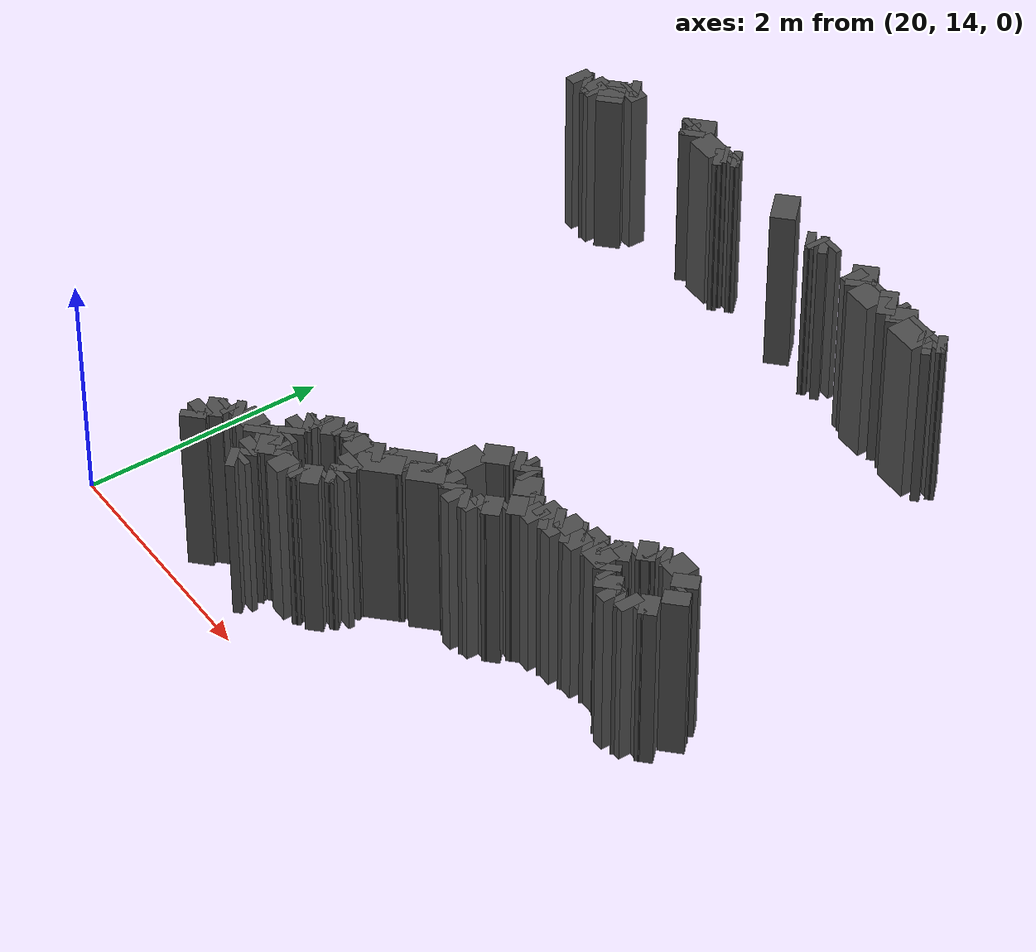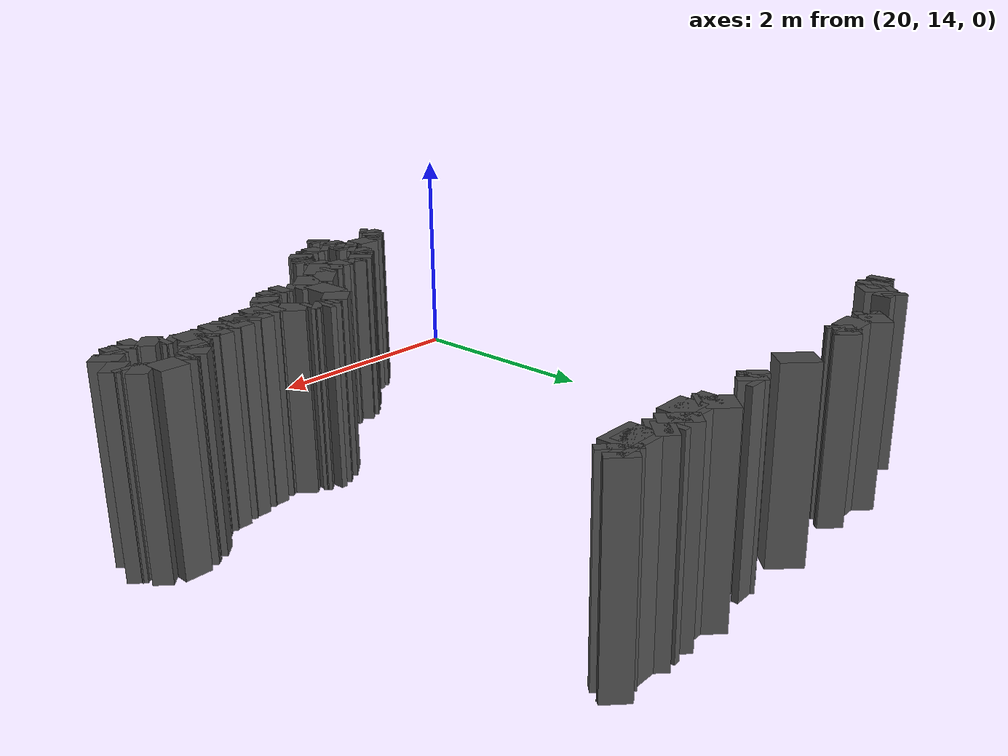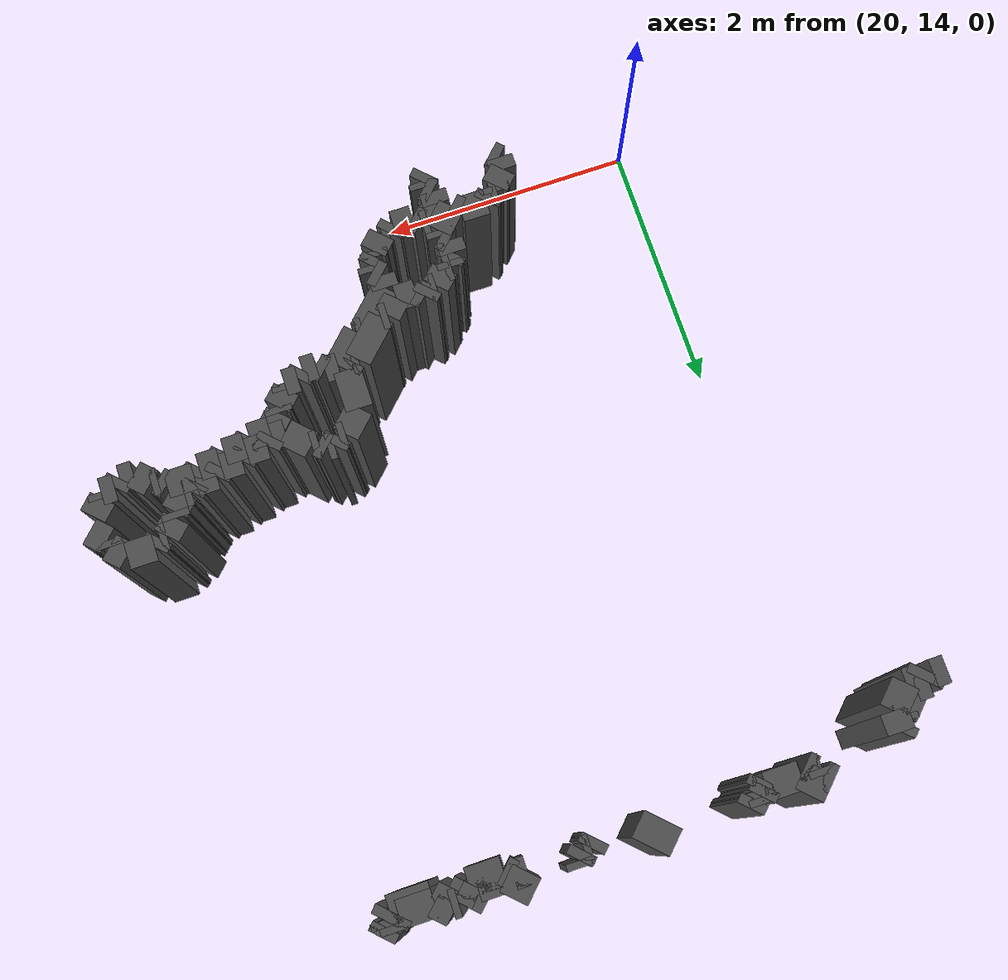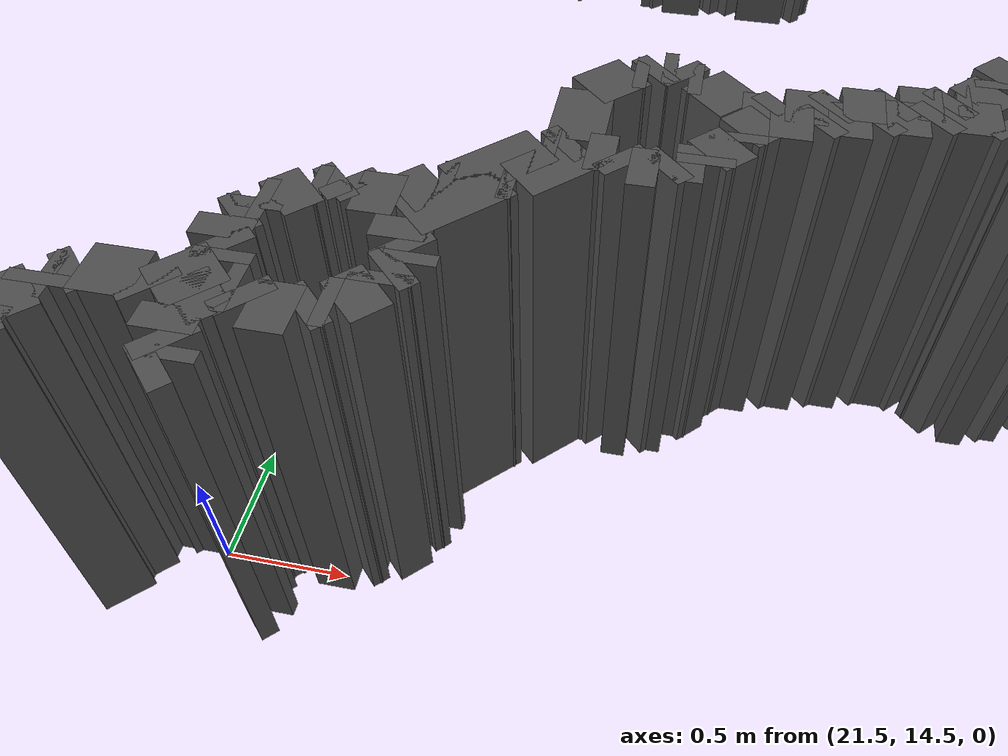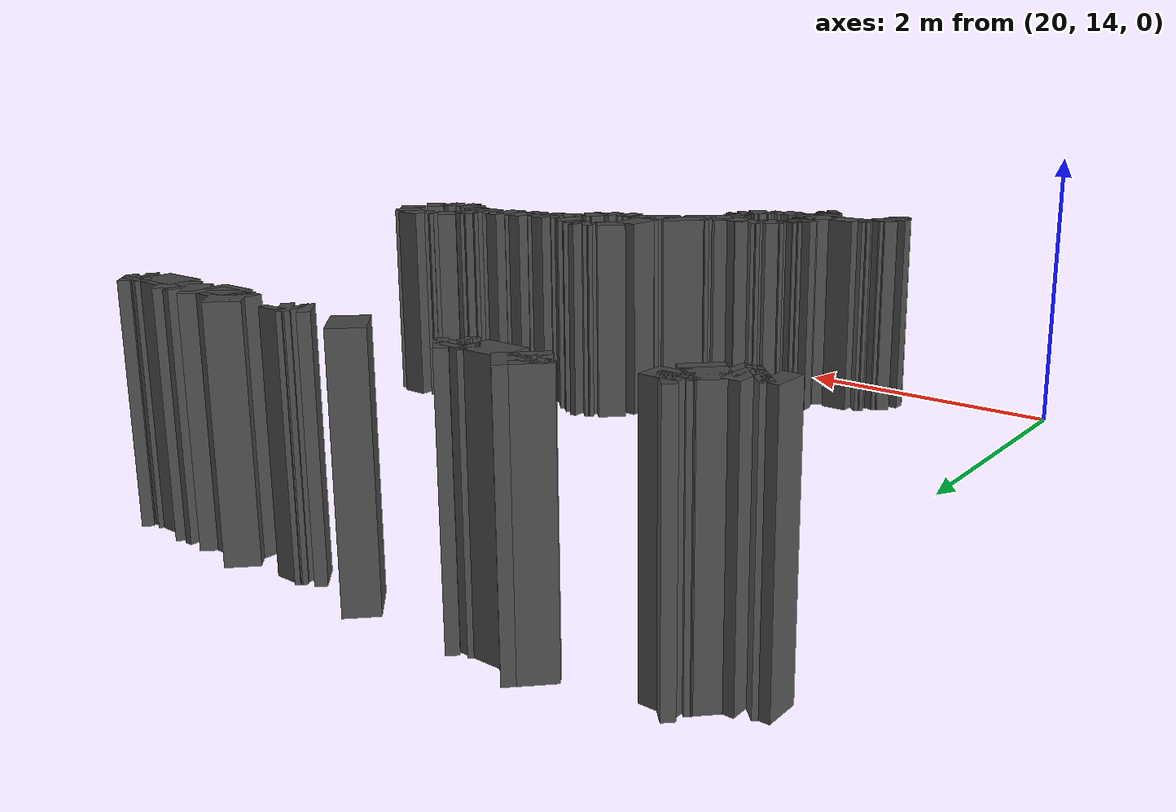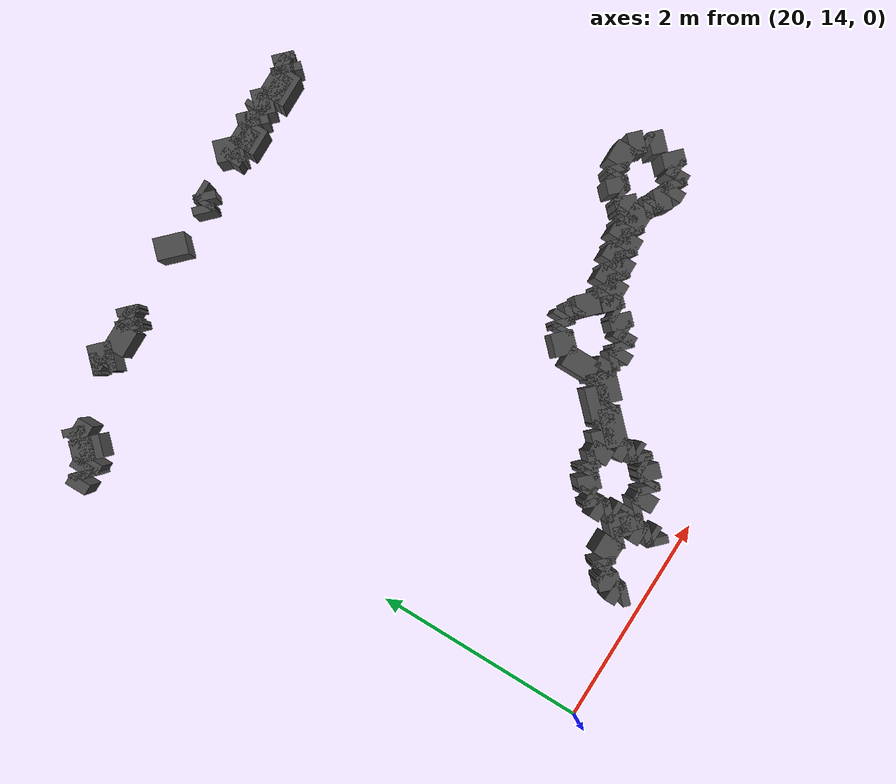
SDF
<sdf version="1.9">
 <model name="generated_walls">
  <static>true</static>
  <link name="wall_101_4">
   <pose>22.675 19.275 0.75 0 0 -0.785</pose>
   <collision name="collision"><geometry><box><size>0.212 0.2 1.5</size></box></geometry></collision>
   <visual name="visual">
    <geometry><box><size>0.212 0.2 1.5</size></box></geometry>
    <material><ambient>0.3 0.3 0.3 1</ambient></material>
   </visual>
  </link>
  <link name="wall_101_5">
   <pose>22.850 19.200 0.75 0 0 0.000</pose>
   <collision name="collision"><geometry><box><size>0.200 0.2 1.5</size></box></geometry></collision>
   <visual name="visual">
    <geometry><box><size>0.200 0.2 1.5</size></box></geometry>
    <material><ambient>0.3 0.3 0.3 1</ambient></material>
   </visual>
  </link>
  <link name="wall_101_6">
   <pose>23.000 19.250 0.75 0 0 0.785</pose>
   <collision name="collision"><geometry><box><size>0.141 0.2 1.5</size></box></geometry></collision>
   <visual name="visual">
    <geometry><box><size>0.141 0.2 1.5</size></box></geometry>
    <material><ambient>0.3 0.3 0.3 1</ambient></material>
   </visual>
  </link>
  <link name="wall_101_12">
   <pose>23.200 19.250 0.75 0 0 -0.785</pose>
   <collision name="collision"><geometry><box><size>0.141 0.2 1.5</size></box></geometry></collision>
   <visual name="visual">
    <geometry><box><size>0.141 0.2 1.5</size></box></geometry>
    <material><ambient>0.3 0.3 0.3 1</ambient></material>
   </visual>
  </link>
  <link name="wall_101_13">
   <pose>23.375 19.200 0.75 0 0 0.000</pose>
   <collision name="collision"><geometry><box><size>0.250 0.2 1.5</size></box></geometry></collision>
   <visual name="visual">
    <geometry><box><size>0.250 0.2 1.5</size></box></geometry>
    <material><ambient>0.3 0.3 0.3 1</ambient></material>
   </visual>
  </link>
  <link name="wall_101_14">
   <pose>23.525 19.225 0.75 0 0 0.785</pose>
   <collision name="collision"><geometry><box><size>0.071 0.2 1.5</size></box></geometry></collision>
   <visual name="visual">
    <geometry><box><size>0.071 0.2 1.5</size></box></geometry>
    <material><ambient>0.3 0.3 0.3 1</ambient></material>
   </visual>
  </link>
  <link name="wall_101_15">
   <pose>23.550 19.275 0.75 0 0 1.571</pose>
   <collision name="collision"><geometry><box><size>0.050 0.2 1.5</size></box></geometry></collision>
   <visual name="visual">
    <geometry><box><size>0.050 0.2 1.5</size></box></geometry>
    <material><ambient>0.3 0.3 0.3 1</ambient></material>
   </visual>
  </link>
  <link name="wall_101_20">
   <pose>23.625 19.275 0.75 0 0 -2.356</pose>
   <collision name="collision"><geometry><box><size>0.071 0.2 1.5</size></box></geometry></collision>
   <visual name="visual">
    <geometry><box><size>0.071 0.2 1.5</size></box></geometry>
    <material><ambient>0.3 0.3 0.3 1</ambient></material>
   </visual>
  </link>
  <link name="wall_101_21">
   <pose>23.600 19.225 0.75 0 0 -1.571</pose>
   <collision name="collision"><geometry><box><size>0.050 0.2 1.5</size></box></geometry></collision>
   <visual name="visual">
    <geometry><box><size>0.050 0.2 1.5</size></box></geometry>
    <material><ambient>0.3 0.3 0.3 1</ambient></material>
   </visual>
  </link>
  <link name="wall_101_22">
   <pose>23.575 19.175 0.75 0 0 -2.356</pose>
   <collision name="collision"><geometry><box><size>0.071 0.2 1.5</size></box></geometry></collision>
   <visual name="visual">
    <geometry><box><size>0.071 0.2 1.5</size></box></geometry>
    <material><ambient>0.3 0.3 0.3 1</ambient></material>
   </visual>
  </link>
  <link name="wall_101_23">
   <pose>23.400 19.150 0.75 0 0 3.142</pose>
   <collision name="collision"><geometry><box><size>0.300 0.2 1.5</size></box></geometry></collision>
   <visual name="visual">
    <geometry><box><size>0.300 0.2 1.5</size></box></geometry>
    <material><ambient>0.3 0.3 0.3 1</ambient></material>
   </visual>
  </link>
  <link name="wall_101_24">
   <pose>23.200 19.200 0.75 0 0 2.356</pose>
   <collision name="collision"><geometry><box><size>0.141 0.2 1.5</size></box></geometry></collision>
   <visual name="visual">
    <geometry><box><size>0.141 0.2 1.5</size></box></geometry>
    <material><ambient>0.3 0.3 0.3 1</ambient></material>
   </visual>
  </link>
  <link name="wall_101_25">
   <pose>23.125 19.250 0.75 0 0 3.142</pose>
   <collision name="collision"><geometry><box><size>0.050 0.2 1.5</size></box></geometry></collision>
   <visual name="visual">
    <geometry><box><size>0.050 0.2 1.5</size></box></geometry>
    <material><ambient>0.3 0.3 0.3 1</ambient></material>
   </visual>
  </link>
  <link name="wall_101_26">
   <pose>23.050 19.200 0.75 0 0 -2.356</pose>
   <collision name="collision"><geometry><box><size>0.141 0.2 1.5</size></box></geometry></collision>
   <visual name="visual">
    <geometry><box><size>0.141 0.2 1.5</size></box></geometry>
    <material><ambient>0.3 0.3 0.3 1</ambient></material>
   </visual>
  </link>
  <link name="wall_101_27">
   <pose>22.875 19.150 0.75 0 0 3.142</pose>
   <collision name="collision"><geometry><box><size>0.250 0.2 1.5</size></box></geometry></collision>
   <visual name="visual">
    <geometry><box><size>0.250 0.2 1.5</size></box></geometry>
    <material><ambient>0.3 0.3 0.3 1</ambient></material>
   </visual>
  </link>
  <link name="wall_101_28">
   <pose>22.725 19.175 0.75 0 0 2.356</pose>
   <collision name="collision"><geometry><box><size>0.071 0.2 1.5</size></box></geometry></collision>
   <visual name="visual">
    <geometry><box><size>0.071 0.2 1.5</size></box></geometry>
    <material><ambient>0.3 0.3 0.3 1</ambient></material>
   </visual>
  </link>
  <link name="wall_101_29">
   <pose>22.650 19.200 0.75 0 0 3.142</pose>
   <collision name="collision"><geometry><box><size>0.100 0.2 1.5</size></box></geometry></collision>
   <visual name="visual">
    <geometry><box><size>0.100 0.2 1.5</size></box></geometry>
    <material><ambient>0.3 0.3 0.3 1</ambient></material>
   </visual>
  </link>
  <link name="wall_102_0">
   <pose>21.700 19.250 0.75 0 0 2.356</pose>
   <collision name="collision"><geometry><box><size>0.283 0.2 1.5</size></box></geometry></collision>
   <visual name="visual">
    <geometry><box><size>0.283 0.2 1.5</size></box></geometry>
    <material><ambient>0.3 0.3 0.3 1</ambient></material>
   </visual>
  </link>
  <link name="wall_102_17">
   <pose>22.250 19.275 0.75 0 0 -1.571</pose>
   <collision name="collision"><geometry><box><size>0.050 0.2 1.5</size></box></geometry></collision>
   <visual name="visual">
    <geometry><box><size>0.050 0.2 1.5</size></box></geometry>
    <material><ambient>0.3 0.3 0.3 1</ambient></material>
   </visual>
  </link>
  <link name="wall_102_18">
   <pose>22.225 19.225 0.75 0 0 -2.356</pose>
   <collision name="collision"><geometry><box><size>0.071 0.2 1.5</size></box></geometry></collision>
   <visual name="visual">
    <geometry><box><size>0.071 0.2 1.5</size></box></geometry>
    <material><ambient>0.3 0.3 0.3 1</ambient></material>
   </visual>
  </link>
  <link name="wall_102_19">
   <pose>22.175 19.200 0.75 0 0 3.142</pose>
   <collision name="collision"><geometry><box><size>0.050 0.2 1.5</size></box></geometry></collision>
   <visual name="visual">
    <geometry><box><size>0.050 0.2 1.5</size></box></geometry>
    <material><ambient>0.3 0.3 0.3 1</ambient></material>
   </visual>
  </link>
  <link name="wall_102_20">
   <pose>22.125 19.175 0.75 0 0 -2.356</pose>
   <collision name="collision"><geometry><box><size>0.071 0.2 1.5</size></box></geometry></collision>
   <visual name="visual">
    <geometry><box><size>0.071 0.2 1.5</size></box></geometry>
    <material><ambient>0.3 0.3 0.3 1</ambient></material>
   </visual>
  </link>
  <link name="wall_103_0">
   <pose>20.575 19.175 0.75 0 0 2.356</pose>
   <collision name="collision"><geometry><box><size>0.071 0.2 1.5</size></box></geometry></collision>
   <visual name="visual">
    <geometry><box><size>0.071 0.2 1.5</size></box></geometry>
    <material><ambient>0.3 0.3 0.3 1</ambient></material>
   </visual>
  </link>
  <link name="wall_103_1">
   <pose>20.525 19.200 0.75 0 0 3.142</pose>
   <collision name="collision"><geometry><box><size>0.050 0.2 1.5</size></box></geometry></collision>
   <visual name="visual">
    <geometry><box><size>0.050 0.2 1.5</size></box></geometry>
    <material><ambient>0.3 0.3 0.3 1</ambient></material>
   </visual>
  </link>
  <link name="wall_103_2">
   <pose>20.500 19.225 0.75 0 0 1.571</pose>
   <collision name="collision"><geometry><box><size>0.050 0.2 1.5</size></box></geometry></collision>
   <visual name="visual">
    <geometry><box><size>0.050 0.2 1.5</size></box></geometry>
    <material><ambient>0.3 0.3 0.3 1</ambient></material>
   </visual>
  </link>
  <link name="wall_103_3">
   <pose>20.475 19.275 0.75 0 0 2.356</pose>
   <collision name="collision"><geometry><box><size>0.071 0.2 1.5</size></box></geometry></collision>
   <visual name="visual">
    <geometry><box><size>0.071 0.2 1.5</size></box></geometry>
    <material><ambient>0.3 0.3 0.3 1</ambient></material>
   </visual>
  </link>
  <link name="wall_103_7">
   <pose>20.575 19.275 0.75 0 0 -0.785</pose>
   <collision name="collision"><geometry><box><size>0.212 0.2 1.5</size></box></geometry></collision>
   <visual name="visual">
    <geometry><box><size>0.212 0.2 1.5</size></box></geometry>
    <material><ambient>0.3 0.3 0.3 1</ambient></material>
   </visual>
  </link>
  <link name="wall_103_8">
   <pose>20.775 19.200 0.75 0 0 0.000</pose>
   <collision name="collision"><geometry><box><size>0.250 0.2 1.5</size></box></geometry></collision>
   <visual name="visual">
    <geometry><box><size>0.250 0.2 1.5</size></box></geometry>
    <material><ambient>0.3 0.3 0.3 1</ambient></material>
   </visual>
  </link>
  <link name="wall_103_9">
   <pose>20.925 19.225 0.75 0 0 0.785</pose>
   <collision name="collision"><geometry><box><size>0.071 0.2 1.5</size></box></geometry></collision>
   <visual name="visual">
    <geometry><box><size>0.071 0.2 1.5</size></box></geometry>
    <material><ambient>0.3 0.3 0.3 1</ambient></material>
   </visual>
  </link>
  <link name="wall_103_10">
   <pose>20.950 19.275 0.75 0 0 1.571</pose>
   <collision name="collision"><geometry><box><size>0.050 0.2 1.5</size></box></geometry></collision>
   <visual name="visual">
    <geometry><box><size>0.050 0.2 1.5</size></box></geometry>
    <material><ambient>0.3 0.3 0.3 1</ambient></material>
   </visual>
  </link>
  <link name="wall_103_34">
   <pose>21.025 19.275 0.75 0 0 -2.356</pose>
   <collision name="collision"><geometry><box><size>0.071 0.2 1.5</size></box></geometry></collision>
   <visual name="visual">
    <geometry><box><size>0.071 0.2 1.5</size></box></geometry>
    <material><ambient>0.3 0.3 0.3 1</ambient></material>
   </visual>
  </link>
  <link name="wall_103_35">
   <pose>21.000 19.225 0.75 0 0 -1.571</pose>
   <collision name="collision"><geometry><box><size>0.050 0.2 1.5</size></box></geometry></collision>
   <visual name="visual">
    <geometry><box><size>0.050 0.2 1.5</size></box></geometry>
    <material><ambient>0.3 0.3 0.3 1</ambient></material>
   </visual>
  </link>
  <link name="wall_103_36">
   <pose>20.975 19.200 0.75 0 0 3.142</pose>
   <collision name="collision"><geometry><box><size>0.050 0.2 1.5</size></box></geometry></collision>
   <visual name="visual">
    <geometry><box><size>0.050 0.2 1.5</size></box></geometry>
    <material><ambient>0.3 0.3 0.3 1</ambient></material>
   </visual>
  </link>
  <link name="wall_103_37">
   <pose>20.925 19.175 0.75 0 0 -2.356</pose>
   <collision name="collision"><geometry><box><size>0.071 0.2 1.5</size></box></geometry></collision>
   <visual name="visual">
    <geometry><box><size>0.071 0.2 1.5</size></box></geometry>
    <material><ambient>0.3 0.3 0.3 1</ambient></material>
   </visual>
  </link>
  <link name="wall_111_54">
   <pose>19.500 18.850 0.75 0 0 0.000</pose>
   <collision name="collision"><geometry><box><size>0.100 0.2 1.5</size></box></geometry></collision>
   <visual name="visual">
    <geometry><box><size>0.100 0.2 1.5</size></box></geometry>
    <material><ambient>0.3 0.3 0.3 1</ambient></material>
   </visual>
  </link>
  <link name="wall_111_55">
   <pose>19.575 18.875 0.75 0 0 0.785</pose>
   <collision name="collision"><geometry><box><size>0.071 0.2 1.5</size></box></geometry></collision>
   <visual name="visual">
    <geometry><box><size>0.071 0.2 1.5</size></box></geometry>
    <material><ambient>0.3 0.3 0.3 1</ambient></material>
   </visual>
  </link>
  <link name="wall_111_56">
   <pose>19.650 18.900 0.75 0 0 0.000</pose>
   <collision name="collision"><geometry><box><size>0.100 0.2 1.5</size></box></geometry></collision>
   <visual name="visual">
    <geometry><box><size>0.100 0.2 1.5</size></box></geometry>
    <material><ambient>0.3 0.3 0.3 1</ambient></material>
   </visual>
  </link>
  <link name="wall_111_57">
   <pose>19.775 18.975 0.75 0 0 0.785</pose>
   <collision name="collision"><geometry><box><size>0.212 0.2 1.5</size></box></geometry></collision>
   <visual name="visual">
    <geometry><box><size>0.212 0.2 1.5</size></box></geometry>
    <material><ambient>0.3 0.3 0.3 1</ambient></material>
   </visual>
  </link>
  <link name="wall_111_58">
   <pose>19.850 19.075 0.75 0 0 1.571</pose>
   <collision name="collision"><geometry><box><size>0.050 0.2 1.5</size></box></geometry></collision>
   <visual name="visual">
    <geometry><box><size>0.050 0.2 1.5</size></box></geometry>
    <material><ambient>0.3 0.3 0.3 1</ambient></material>
   </visual>
  </link>
  <link name="wall_111_59">
   <pose>19.875 19.125 0.75 0 0 0.785</pose>
   <collision name="collision"><geometry><box><size>0.071 0.2 1.5</size></box></geometry></collision>
   <visual name="visual">
    <geometry><box><size>0.071 0.2 1.5</size></box></geometry>
    <material><ambient>0.3 0.3 0.3 1</ambient></material>
   </visual>
  </link>
  <link name="wall_111_60">
   <pose>19.900 19.075 0.75 0 0 -1.571</pose>
   <collision name="collision"><geometry><box><size>0.150 0.2 1.5</size></box></geometry></collision>
   <visual name="visual">
    <geometry><box><size>0.150 0.2 1.5</size></box></geometry>
    <material><ambient>0.3 0.3 0.3 1</ambient></material>
   </visual>
  </link>
  <link name="wall_111_61">
   <pose>19.825 18.925 0.75 0 0 -2.356</pose>
   <collision name="collision"><geometry><box><size>0.212 0.2 1.5</size></box></geometry></collision>
   <visual name="visual">
    <geometry><box><size>0.212 0.2 1.5</size></box></geometry>
    <material><ambient>0.3 0.3 0.3 1</ambient></material>
   </visual>
  </link>
  <link name="wall_111_62">
   <pose>19.700 18.850 0.75 0 0 3.142</pose>
   <collision name="collision"><geometry><box><size>0.100 0.2 1.5</size></box></geometry></collision>
   <visual name="visual">
    <geometry><box><size>0.100 0.2 1.5</size></box></geometry>
    <material><ambient>0.3 0.3 0.3 1</ambient></material>
   </visual>
  </link>
  <link name="wall_111_63">
   <pose>19.625 18.825 0.75 0 0 -2.356</pose>
   <collision name="collision"><geometry><box><size>0.071 0.2 1.5</size></box></geometry></collision>
   <visual name="visual">
    <geometry><box><size>0.071 0.2 1.5</size></box></geometry>
    <material><ambient>0.3 0.3 0.3 1</ambient></material>
   </visual>
  </link>
  <link name="wall_161_1552">
   <pose>24.650 15.900 0.75 0 0 -2.356</pose>
   <collision name="collision"><geometry><box><size>0.141 0.2 1.5</size></box></geometry></collision>
   <visual name="visual">
    <geometry><box><size>0.141 0.2 1.5</size></box></geometry>
    <material><ambient>0.3 0.3 0.3 1</ambient></material>
   </visual>
  </link>
  <link name="wall_161_1553">
   <pose>24.600 15.825 0.75 0 0 -1.571</pose>
   <collision name="collision"><geometry><box><size>0.050 0.2 1.5</size></box></geometry></collision>
   <visual name="visual">
    <geometry><box><size>0.050 0.2 1.5</size></box></geometry>
    <material><ambient>0.3 0.3 0.3 1</ambient></material>
   </visual>
  </link>
  <link name="wall_161_1554">
   <pose>24.550 15.800 0.75 0 0 3.142</pose>
   <collision name="collision"><geometry><box><size>0.100 0.2 1.5</size></box></geometry></collision>
   <visual name="visual">
    <geometry><box><size>0.100 0.2 1.5</size></box></geometry>
    <material><ambient>0.3 0.3 0.3 1</ambient></material>
   </visual>
  </link>
  <link name="wall_161_1555">
   <pose>24.475 15.775 0.75 0 0 -2.356</pose>
   <collision name="collision"><geometry><box><size>0.071 0.2 1.5</size></box></geometry></collision>
   <visual name="visual">
    <geometry><box><size>0.071 0.2 1.5</size></box></geometry>
    <material><ambient>0.3 0.3 0.3 1</ambient></material>
   </visual>
  </link>
  <link name="wall_161_1556">
   <pose>24.400 15.750 0.75 0 0 3.142</pose>
   <collision name="collision"><geometry><box><size>0.100 0.2 1.5</size></box></geometry></collision>
   <visual name="visual">
    <geometry><box><size>0.100 0.2 1.5</size></box></geometry>
    <material><ambient>0.3 0.3 0.3 1</ambient></material>
   </visual>
  </link>
  <link name="wall_161_1557">
   <pose>24.300 15.800 0.75 0 0 2.356</pose>
   <collision name="collision"><geometry><box><size>0.141 0.2 1.5</size></box></geometry></collision>
   <visual name="visual">
    <geometry><box><size>0.141 0.2 1.5</size></box></geometry>
    <material><ambient>0.3 0.3 0.3 1</ambient></material>
   </visual>
  </link>
  <link name="wall_161_1558">
   <pose>24.225 15.850 0.75 0 0 3.142</pose>
   <collision name="collision"><geometry><box><size>0.050 0.2 1.5</size></box></geometry></collision>
   <visual name="visual">
    <geometry><box><size>0.050 0.2 1.5</size></box></geometry>
    <material><ambient>0.3 0.3 0.3 1</ambient></material>
   </visual>
  </link>
  <link name="wall_161_1559">
   <pose>24.175 15.875 0.75 0 0 2.356</pose>
   <collision name="collision"><geometry><box><size>0.071 0.2 1.5</size></box></geometry></collision>
   <visual name="visual">
    <geometry><box><size>0.071 0.2 1.5</size></box></geometry>
    <material><ambient>0.3 0.3 0.3 1</ambient></material>
   </visual>
  </link>
  <link name="wall_161_1560">
   <pose>24.050 15.900 0.75 0 0 3.142</pose>
   <collision name="collision"><geometry><box><size>0.200 0.2 1.5</size></box></geometry></collision>
   <visual name="visual">
    <geometry><box><size>0.200 0.2 1.5</size></box></geometry>
    <material><ambient>0.3 0.3 0.3 1</ambient></material>
   </visual>
  </link>
  <link name="wall_161_1561">
   <pose>23.925 15.875 0.75 0 0 -2.356</pose>
   <collision name="collision"><geometry><box><size>0.071 0.2 1.5</size></box></geometry></collision>
   <visual name="visual">
    <geometry><box><size>0.071 0.2 1.5</size></box></geometry>
    <material><ambient>0.3 0.3 0.3 1</ambient></material>
   </visual>
  </link>
  <link name="wall_161_1562">
   <pose>23.825 15.850 0.75 0 0 3.142</pose>
   <collision name="collision"><geometry><box><size>0.150 0.2 1.5</size></box></geometry></collision>
   <visual name="visual">
    <geometry><box><size>0.150 0.2 1.5</size></box></geometry>
    <material><ambient>0.3 0.3 0.3 1</ambient></material>
   </visual>
  </link>
  <link name="wall_161_1563">
   <pose>23.725 15.825 0.75 0 0 -2.356</pose>
   <collision name="collision"><geometry><box><size>0.071 0.2 1.5</size></box></geometry></collision>
   <visual name="visual">
    <geometry><box><size>0.071 0.2 1.5</size></box></geometry>
    <material><ambient>0.3 0.3 0.3 1</ambient></material>
   </visual>
  </link>
  <link name="wall_161_1564">
   <pose>23.625 15.800 0.75 0 0 3.142</pose>
   <collision name="collision"><geometry><box><size>0.150 0.2 1.5</size></box></geometry></collision>
   <visual name="visual">
    <geometry><box><size>0.150 0.2 1.5</size></box></geometry>
    <material><ambient>0.3 0.3 0.3 1</ambient></material>
   </visual>
  </link>
  <link name="wall_161_1565">
   <pose>23.525 15.775 0.75 0 0 -2.356</pose>
   <collision name="collision"><geometry><box><size>0.071 0.2 1.5</size></box></geometry></collision>
   <visual name="visual">
    <geometry><box><size>0.071 0.2 1.5</size></box></geometry>
    <material><ambient>0.3 0.3 0.3 1</ambient></material>
   </visual>
  </link>
  <link name="wall_161_1566">
   <pose>23.425 15.750 0.75 0 0 3.142</pose>
   <collision name="collision"><geometry><box><size>0.150 0.2 1.5</size></box></geometry></collision>
   <visual name="visual">
    <geometry><box><size>0.150 0.2 1.5</size></box></geometry>
    <material><ambient>0.3 0.3 0.3 1</ambient></material>
   </visual>
  </link>
  <link name="wall_161_1567">
   <pose>23.300 15.700 0.75 0 0 -2.356</pose>
   <collision name="collision"><geometry><box><size>0.141 0.2 1.5</size></box></geometry></collision>
   <visual name="visual">
    <geometry><box><size>0.141 0.2 1.5</size></box></geometry>
    <material><ambient>0.3 0.3 0.3 1</ambient></material>
   </visual>
  </link>
  <link name="wall_161_1568">
   <pose>23.250 15.625 0.75 0 0 -1.571</pose>
   <collision name="collision"><geometry><box><size>0.050 0.2 1.5</size></box></geometry></collision>
   <visual name="visual">
    <geometry><box><size>0.050 0.2 1.5</size></box></geometry>
    <material><ambient>0.3 0.3 0.3 1</ambient></material>
   </visual>
  </link>
  <link name="wall_161_1569">
   <pose>23.200 15.550 0.75 0 0 -2.356</pose>
   <collision name="collision"><geometry><box><size>0.141 0.2 1.5</size></box></geometry></collision>
   <visual name="visual">
    <geometry><box><size>0.141 0.2 1.5</size></box></geometry>
    <material><ambient>0.3 0.3 0.3 1</ambient></material>
   </visual>
  </link>
  <link name="wall_161_1570">
   <pose>23.150 15.475 0.75 0 0 -1.571</pose>
   <collision name="collision"><geometry><box><size>0.050 0.2 1.5</size></box></geometry></collision>
   <visual name="visual">
    <geometry><box><size>0.050 0.2 1.5</size></box></geometry>
    <material><ambient>0.3 0.3 0.3 1</ambient></material>
   </visual>
  </link>
  <link name="wall_161_1571">
   <pose>23.100 15.450 0.75 0 0 3.142</pose>
   <collision name="collision"><geometry><box><size>0.100 0.2 1.5</size></box></geometry></collision>
   <visual name="visual">
    <geometry><box><size>0.100 0.2 1.5</size></box></geometry>
    <material><ambient>0.3 0.3 0.3 1</ambient></material>
   </visual>
  </link>
  <link name="wall_161_1572">
   <pose>23.025 15.425 0.75 0 0 -2.356</pose>
   <collision name="collision"><geometry><box><size>0.071 0.2 1.5</size></box></geometry></collision>
   <visual name="visual">
    <geometry><box><size>0.071 0.2 1.5</size></box></geometry>
    <material><ambient>0.3 0.3 0.3 1</ambient></material>
   </visual>
  </link>
  <link name="wall_161_1573">
   <pose>22.950 15.400 0.75 0 0 3.142</pose>
   <collision name="collision"><geometry><box><size>0.100 0.2 1.5</size></box></geometry></collision>
   <visual name="visual">
    <geometry><box><size>0.100 0.2 1.5</size></box></geometry>
    <material><ambient>0.3 0.3 0.3 1</ambient></material>
   </visual>
  </link>
  <link name="wall_161_1574">
   <pose>22.875 15.425 0.75 0 0 2.356</pose>
   <collision name="collision"><geometry><box><size>0.071 0.2 1.5</size></box></geometry></collision>
   <visual name="visual">
    <geometry><box><size>0.071 0.2 1.5</size></box></geometry>
    <material><ambient>0.3 0.3 0.3 1</ambient></material>
   </visual>
  </link>
  <link name="wall_161_1575">
   <pose>22.800 15.450 0.75 0 0 3.142</pose>
   <collision name="collision"><geometry><box><size>0.100 0.2 1.5</size></box></geometry></collision>
   <visual name="visual">
    <geometry><box><size>0.100 0.2 1.5</size></box></geometry>
    <material><ambient>0.3 0.3 0.3 1</ambient></material>
   </visual>
  </link>
  <link name="wall_161_1576">
   <pose>22.650 15.350 0.75 0 0 -2.356</pose>
   <collision name="collision"><geometry><box><size>0.283 0.2 1.5</size></box></geometry></collision>
   <visual name="visual">
    <geometry><box><size>0.283 0.2 1.5</size></box></geometry>
    <material><ambient>0.3 0.3 0.3 1</ambient></material>
   </visual>
  </link>
  <link name="wall_161_1577">
   <pose>22.525 15.250 0.75 0 0 3.142</pose>
   <collision name="collision"><geometry><box><size>0.050 0.2 1.5</size></box></geometry></collision>
   <visual name="visual">
    <geometry><box><size>0.050 0.2 1.5</size></box></geometry>
    <material><ambient>0.3 0.3 0.3 1</ambient></material>
   </visual>
  </link>
  <link name="wall_161_1578">
   <pose>22.375 15.125 0.75 0 0 -2.356</pose>
   <collision name="collision"><geometry><box><size>0.354 0.2 1.5</size></box></geometry></collision>
   <visual name="visual">
    <geometry><box><size>0.354 0.2 1.5</size></box></geometry>
    <material><ambient>0.3 0.3 0.3 1</ambient></material>
   </visual>
  </link>
  <link name="wall_161_1579">
   <pose>22.250 14.950 0.75 0 0 -1.571</pose>
   <collision name="collision"><geometry><box><size>0.100 0.2 1.5</size></box></geometry></collision>
   <visual name="visual">
    <geometry><box><size>0.100 0.2 1.5</size></box></geometry>
    <material><ambient>0.3 0.3 0.3 1</ambient></material>
   </visual>
  </link>
  <link name="wall_161_1580">
   <pose>22.275 14.875 0.75 0 0 -0.785</pose>
   <collision name="collision"><geometry><box><size>0.071 0.2 1.5</size></box></geometry></collision>
   <visual name="visual">
    <geometry><box><size>0.071 0.2 1.5</size></box></geometry>
    <material><ambient>0.3 0.3 0.3 1</ambient></material>
   </visual>
  </link>
  <link name="wall_161_1581">
   <pose>22.300 14.825 0.75 0 0 -1.571</pose>
   <collision name="collision"><geometry><box><size>0.050 0.2 1.5</size></box></geometry></collision>
   <visual name="visual">
    <geometry><box><size>0.050 0.2 1.5</size></box></geometry>
    <material><ambient>0.3 0.3 0.3 1</ambient></material>
   </visual>
  </link>
  <link name="wall_161_1582">
   <pose>22.275 14.775 0.75 0 0 -2.356</pose>
   <collision name="collision"><geometry><box><size>0.071 0.2 1.5</size></box></geometry></collision>
   <visual name="visual">
    <geometry><box><size>0.071 0.2 1.5</size></box></geometry>
    <material><ambient>0.3 0.3 0.3 1</ambient></material>
   </visual>
  </link>
  <link name="wall_161_1583">
   <pose>22.250 14.725 0.75 0 0 -1.571</pose>
   <collision name="collision"><geometry><box><size>0.050 0.2 1.5</size></box></geometry></collision>
   <visual name="visual">
    <geometry><box><size>0.050 0.2 1.5</size></box></geometry>
    <material><ambient>0.3 0.3 0.3 1</ambient></material>
   </visual>
  </link>
  <link name="wall_161_1584">
   <pose>22.200 14.650 0.75 0 0 -2.356</pose>
   <collision name="collision"><geometry><box><size>0.141 0.2 1.5</size></box></geometry></collision>
   <visual name="visual">
    <geometry><box><size>0.141 0.2 1.5</size></box></geometry>
    <material><ambient>0.3 0.3 0.3 1</ambient></material>
   </visual>
  </link>
  <link name="wall_161_1585">
   <pose>22.125 14.600 0.75 0 0 3.142</pose>
   <collision name="collision"><geometry><box><size>0.050 0.2 1.5</size></box></geometry></collision>
   <visual name="visual">
    <geometry><box><size>0.050 0.2 1.5</size></box></geometry>
    <material><ambient>0.3 0.3 0.3 1</ambient></material>
   </visual>
  </link>
  <link name="wall_161_1586">
   <pose>22.075 14.575 0.75 0 0 -2.356</pose>
   <collision name="collision"><geometry><box><size>0.071 0.2 1.5</size></box></geometry></collision>
   <visual name="visual">
    <geometry><box><size>0.071 0.2 1.5</size></box></geometry>
    <material><ambient>0.3 0.3 0.3 1</ambient></material>
   </visual>
  </link>
  <link name="wall_161_1587">
   <pose>21.975 14.550 0.75 0 0 3.142</pose>
   <collision name="collision"><geometry><box><size>0.150 0.2 1.5</size></box></geometry></collision>
   <visual name="visual">
    <geometry><box><size>0.150 0.2 1.5</size></box></geometry>
    <material><ambient>0.3 0.3 0.3 1</ambient></material>
   </visual>
  </link>
  <link name="wall_161_1588">
   <pose>21.875 14.575 0.75 0 0 2.356</pose>
   <collision name="collision"><geometry><box><size>0.071 0.2 1.5</size></box></geometry></collision>
   <visual name="visual">
    <geometry><box><size>0.071 0.2 1.5</size></box></geometry>
    <material><ambient>0.3 0.3 0.3 1</ambient></material>
   </visual>
  </link>
  <link name="wall_161_1589">
   <pose>21.825 14.600 0.75 0 0 3.142</pose>
   <collision name="collision"><geometry><box><size>0.050 0.2 1.5</size></box></geometry></collision>
   <visual name="visual">
    <geometry><box><size>0.050 0.2 1.5</size></box></geometry>
    <material><ambient>0.3 0.3 0.3 1</ambient></material>
   </visual>
  </link>
  <link name="wall_161_1590">
   <pose>21.750 14.550 0.75 0 0 -2.356</pose>
   <collision name="collision"><geometry><box><size>0.141 0.2 1.5</size></box></geometry></collision>
   <visual name="visual">
    <geometry><box><size>0.141 0.2 1.5</size></box></geometry>
    <material><ambient>0.3 0.3 0.3 1</ambient></material>
   </visual>
  </link>
  <link name="wall_161_1591">
   <pose>21.700 14.450 0.75 0 0 -1.571</pose>
   <collision name="collision"><geometry><box><size>0.100 0.2 1.5</size></box></geometry></collision>
   <visual name="visual">
    <geometry><box><size>0.100 0.2 1.5</size></box></geometry>
    <material><ambient>0.3 0.3 0.3 1</ambient></material>
   </visual>
  </link>
  <link name="wall_161_1592">
   <pose>21.725 14.375 0.75 0 0 -0.785</pose>
   <collision name="collision"><geometry><box><size>0.071 0.2 1.5</size></box></geometry></collision>
   <visual name="visual">
    <geometry><box><size>0.071 0.2 1.5</size></box></geometry>
    <material><ambient>0.3 0.3 0.3 1</ambient></material>
   </visual>
  </link>
  <link name="wall_161_1593">
   <pose>21.750 14.325 0.75 0 0 -1.571</pose>
   <collision name="collision"><geometry><box><size>0.050 0.2 1.5</size></box></geometry></collision>
   <visual name="visual">
    <geometry><box><size>0.050 0.2 1.5</size></box></geometry>
    <material><ambient>0.3 0.3 0.3 1</ambient></material>
   </visual>
  </link>
  <link name="wall_161_1594">
   <pose>21.725 14.275 0.75 0 0 -2.356</pose>
   <collision name="collision"><geometry><box><size>0.071 0.2 1.5</size></box></geometry></collision>
   <visual name="visual">
    <geometry><box><size>0.071 0.2 1.5</size></box></geometry>
    <material><ambient>0.3 0.3 0.3 1</ambient></material>
   </visual>
  </link>
  <link name="wall_161_2541">
   <pose>21.175 14.275 0.75 0 0 2.356</pose>
   <collision name="collision"><geometry><box><size>0.071 0.2 1.5</size></box></geometry></collision>
   <visual name="visual">
    <geometry><box><size>0.071 0.2 1.5</size></box></geometry>
    <material><ambient>0.3 0.3 0.3 1</ambient></material>
   </visual>
  </link>
  <link name="wall_161_2542">
   <pose>21.150 14.350 0.75 0 0 1.571</pose>
   <collision name="collision"><geometry><box><size>0.100 0.2 1.5</size></box></geometry></collision>
   <visual name="visual">
    <geometry><box><size>0.100 0.2 1.5</size></box></geometry>
    <material><ambient>0.3 0.3 0.3 1</ambient></material>
   </visual>
  </link>
  <link name="wall_161_2543">
   <pose>21.200 14.450 0.75 0 0 0.785</pose>
   <collision name="collision"><geometry><box><size>0.141 0.2 1.5</size></box></geometry></collision>
   <visual name="visual">
    <geometry><box><size>0.141 0.2 1.5</size></box></geometry>
    <material><ambient>0.3 0.3 0.3 1</ambient></material>
   </visual>
  </link>
  <link name="wall_161_2544">
   <pose>21.250 14.525 0.75 0 0 1.571</pose>
   <collision name="collision"><geometry><box><size>0.050 0.2 1.5</size></box></geometry></collision>
   <visual name="visual">
    <geometry><box><size>0.050 0.2 1.5</size></box></geometry>
    <material><ambient>0.3 0.3 0.3 1</ambient></material>
   </visual>
  </link>
  <link name="wall_161_2545">
   <pose>21.275 14.550 0.75 0 0 0.000</pose>
   <collision name="collision"><geometry><box><size>0.050 0.2 1.5</size></box></geometry></collision>
   <visual name="visual">
    <geometry><box><size>0.050 0.2 1.5</size></box></geometry>
    <material><ambient>0.3 0.3 0.3 1</ambient></material>
   </visual>
  </link>
  <link name="wall_161_2546">
   <pose>21.325 14.575 0.75 0 0 0.785</pose>
   <collision name="collision"><geometry><box><size>0.071 0.2 1.5</size></box></geometry></collision>
   <visual name="visual">
    <geometry><box><size>0.071 0.2 1.5</size></box></geometry>
    <material><ambient>0.3 0.3 0.3 1</ambient></material>
   </visual>
  </link>
  <link name="wall_161_2547">
   <pose>21.450 14.600 0.75 0 0 0.000</pose>
   <collision name="collision"><geometry><box><size>0.200 0.2 1.5</size></box></geometry></collision>
   <visual name="visual">
    <geometry><box><size>0.200 0.2 1.5</size></box></geometry>
    <material><ambient>0.3 0.3 0.3 1</ambient></material>
   </visual>
  </link>
  <link name="wall_161_2548">
   <pose>21.575 14.575 0.75 0 0 -0.785</pose>
   <collision name="collision"><geometry><box><size>0.071 0.2 1.5</size></box></geometry></collision>
   <visual name="visual">
    <geometry><box><size>0.071 0.2 1.5</size></box></geometry>
    <material><ambient>0.3 0.3 0.3 1</ambient></material>
   </visual>
  </link>
  <link name="wall_161_2549">
   <pose>21.675 14.625 0.75 0 0 0.785</pose>
   <collision name="collision"><geometry><box><size>0.212 0.2 1.5</size></box></geometry></collision>
   <visual name="visual">
    <geometry><box><size>0.212 0.2 1.5</size></box></geometry>
    <material><ambient>0.3 0.3 0.3 1</ambient></material>
   </visual>
  </link>
  <link name="wall_161_2550">
   <pose>21.750 14.725 0.75 0 0 1.571</pose>
   <collision name="collision"><geometry><box><size>0.050 0.2 1.5</size></box></geometry></collision>
   <visual name="visual">
    <geometry><box><size>0.050 0.2 1.5</size></box></geometry>
    <material><ambient>0.3 0.3 0.3 1</ambient></material>
   </visual>
  </link>
  <link name="wall_161_2551">
   <pose>21.725 14.775 0.75 0 0 2.356</pose>
   <collision name="collision"><geometry><box><size>0.071 0.2 1.5</size></box></geometry></collision>
   <visual name="visual">
    <geometry><box><size>0.071 0.2 1.5</size></box></geometry>
    <material><ambient>0.3 0.3 0.3 1</ambient></material>
   </visual>
  </link>
  <link name="wall_161_2552">
   <pose>21.700 14.850 0.75 0 0 1.571</pose>
   <collision name="collision"><geometry><box><size>0.100 0.2 1.5</size></box></geometry></collision>
   <visual name="visual">
    <geometry><box><size>0.100 0.2 1.5</size></box></geometry>
    <material><ambient>0.3 0.3 0.3 1</ambient></material>
   </visual>
  </link>
  <link name="wall_161_2553">
   <pose>21.725 14.925 0.75 0 0 0.785</pose>
   <collision name="collision"><geometry><box><size>0.071 0.2 1.5</size></box></geometry></collision>
   <visual name="visual">
    <geometry><box><size>0.071 0.2 1.5</size></box></geometry>
    <material><ambient>0.3 0.3 0.3 1</ambient></material>
   </visual>
  </link>
  <link name="wall_161_2554">
   <pose>21.750 14.975 0.75 0 0 1.571</pose>
   <collision name="collision"><geometry><box><size>0.050 0.2 1.5</size></box></geometry></collision>
   <visual name="visual">
    <geometry><box><size>0.050 0.2 1.5</size></box></geometry>
    <material><ambient>0.3 0.3 0.3 1</ambient></material>
   </visual>
  </link>
  <link name="wall_161_2555">
   <pose>21.775 15.000 0.75 0 0 0.000</pose>
   <collision name="collision"><geometry><box><size>0.050 0.2 1.5</size></box></geometry></collision>
   <visual name="visual">
    <geometry><box><size>0.050 0.2 1.5</size></box></geometry>
    <material><ambient>0.3 0.3 0.3 1</ambient></material>
   </visual>
  </link>
  <link name="wall_161_2556">
   <pose>21.850 15.050 0.75 0 0 0.785</pose>
   <collision name="collision"><geometry><box><size>0.141 0.2 1.5</size></box></geometry></collision>
   <visual name="visual">
    <geometry><box><size>0.141 0.2 1.5</size></box></geometry>
    <material><ambient>0.3 0.3 0.3 1</ambient></material>
   </visual>
  </link>
  <link name="wall_161_2557">
   <pose>21.925 15.100 0.75 0 0 0.000</pose>
   <collision name="collision"><geometry><box><size>0.050 0.2 1.5</size></box></geometry></collision>
   <visual name="visual">
    <geometry><box><size>0.050 0.2 1.5</size></box></geometry>
    <material><ambient>0.3 0.3 0.3 1</ambient></material>
   </visual>
  </link>
  <link name="wall_161_2558">
   <pose>21.975 15.125 0.75 0 0 0.785</pose>
   <collision name="collision"><geometry><box><size>0.071 0.2 1.5</size></box></geometry></collision>
   <visual name="visual">
    <geometry><box><size>0.071 0.2 1.5</size></box></geometry>
    <material><ambient>0.3 0.3 0.3 1</ambient></material>
   </visual>
  </link>
  <link name="wall_161_2559">
   <pose>22.025 15.125 0.75 0 0 -0.785</pose>
   <collision name="collision"><geometry><box><size>0.071 0.2 1.5</size></box></geometry></collision>
   <visual name="visual">
    <geometry><box><size>0.071 0.2 1.5</size></box></geometry>
    <material><ambient>0.3 0.3 0.3 1</ambient></material>
   </visual>
  </link>
  <link name="wall_161_2560">
   <pose>22.125 15.100 0.75 0 0 0.000</pose>
   <collision name="collision"><geometry><box><size>0.150 0.2 1.5</size></box></geometry></collision>
   <visual name="visual">
    <geometry><box><size>0.150 0.2 1.5</size></box></geometry>
    <material><ambient>0.3 0.3 0.3 1</ambient></material>
   </visual>
  </link>
  <link name="wall_161_2561">
   <pose>22.250 15.150 0.75 0 0 0.785</pose>
   <collision name="collision"><geometry><box><size>0.141 0.2 1.5</size></box></geometry></collision>
   <visual name="visual">
    <geometry><box><size>0.141 0.2 1.5</size></box></geometry>
    <material><ambient>0.3 0.3 0.3 1</ambient></material>
   </visual>
  </link>
  <link name="wall_161_2562">
   <pose>22.325 15.200 0.75 0 0 0.000</pose>
   <collision name="collision"><geometry><box><size>0.050 0.2 1.5</size></box></geometry></collision>
   <visual name="visual">
    <geometry><box><size>0.050 0.2 1.5</size></box></geometry>
    <material><ambient>0.3 0.3 0.3 1</ambient></material>
   </visual>
  </link>
  <link name="wall_161_2563">
   <pose>22.475 15.325 0.75 0 0 0.785</pose>
   <collision name="collision"><geometry><box><size>0.354 0.2 1.5</size></box></geometry></collision>
   <visual name="visual">
    <geometry><box><size>0.354 0.2 1.5</size></box></geometry>
    <material><ambient>0.3 0.3 0.3 1</ambient></material>
   </visual>
  </link>
  <link name="wall_161_2564">
   <pose>22.625 15.450 0.75 0 0 0.000</pose>
   <collision name="collision"><geometry><box><size>0.050 0.2 1.5</size></box></geometry></collision>
   <visual name="visual">
    <geometry><box><size>0.050 0.2 1.5</size></box></geometry>
    <material><ambient>0.3 0.3 0.3 1</ambient></material>
   </visual>
  </link>
  <link name="wall_161_2565">
   <pose>22.675 15.475 0.75 0 0 0.785</pose>
   <collision name="collision"><geometry><box><size>0.071 0.2 1.5</size></box></geometry></collision>
   <visual name="visual">
    <geometry><box><size>0.071 0.2 1.5</size></box></geometry>
    <material><ambient>0.3 0.3 0.3 1</ambient></material>
   </visual>
  </link>
  <link name="wall_161_2566">
   <pose>22.700 15.650 0.75 0 0 1.571</pose>
   <collision name="collision"><geometry><box><size>0.300 0.2 1.5</size></box></geometry></collision>
   <visual name="visual">
    <geometry><box><size>0.300 0.2 1.5</size></box></geometry>
    <material><ambient>0.3 0.3 0.3 1</ambient></material>
   </visual>
  </link>
  <link name="wall_161_2567">
   <pose>22.775 15.875 0.75 0 0 0.785</pose>
   <collision name="collision"><geometry><box><size>0.212 0.2 1.5</size></box></geometry></collision>
   <visual name="visual">
    <geometry><box><size>0.212 0.2 1.5</size></box></geometry>
    <material><ambient>0.3 0.3 0.3 1</ambient></material>
   </visual>
  </link>
  <link name="wall_161_2568">
   <pose>22.875 15.950 0.75 0 0 0.000</pose>
   <collision name="collision"><geometry><box><size>0.050 0.2 1.5</size></box></geometry></collision>
   <visual name="visual">
    <geometry><box><size>0.050 0.2 1.5</size></box></geometry>
    <material><ambient>0.3 0.3 0.3 1</ambient></material>
   </visual>
  </link>
  <link name="wall_161_2569">
   <pose>22.925 15.975 0.75 0 0 0.785</pose>
   <collision name="collision"><geometry><box><size>0.071 0.2 1.5</size></box></geometry></collision>
   <visual name="visual">
    <geometry><box><size>0.071 0.2 1.5</size></box></geometry>
    <material><ambient>0.3 0.3 0.3 1</ambient></material>
   </visual>
  </link>
  <link name="wall_161_2570">
   <pose>22.975 16.000 0.75 0 0 0.000</pose>
   <collision name="collision"><geometry><box><size>0.050 0.2 1.5</size></box></geometry></collision>
   <visual name="visual">
    <geometry><box><size>0.050 0.2 1.5</size></box></geometry>
    <material><ambient>0.3 0.3 0.3 1</ambient></material>
   </visual>
  </link>
  <link name="wall_161_2571">
   <pose>23.025 15.975 0.75 0 0 -0.785</pose>
   <collision name="collision"><geometry><box><size>0.071 0.2 1.5</size></box></geometry></collision>
   <visual name="visual">
    <geometry><box><size>0.071 0.2 1.5</size></box></geometry>
    <material><ambient>0.3 0.3 0.3 1</ambient></material>
   </visual>
  </link>
  <link name="wall_161_2572">
   <pose>23.075 15.950 0.75 0 0 0.000</pose>
   <collision name="collision"><geometry><box><size>0.050 0.2 1.5</size></box></geometry></collision>
   <visual name="visual">
    <geometry><box><size>0.050 0.2 1.5</size></box></geometry>
    <material><ambient>0.3 0.3 0.3 1</ambient></material>
   </visual>
  </link>
  <link name="wall_161_2573">
   <pose>23.175 15.875 0.75 0 0 -0.785</pose>
   <collision name="collision"><geometry><box><size>0.212 0.2 1.5</size></box></geometry></collision>
   <visual name="visual">
    <geometry><box><size>0.212 0.2 1.5</size></box></geometry>
    <material><ambient>0.3 0.3 0.3 1</ambient></material>
   </visual>
  </link>
  <link name="wall_161_2574">
   <pose>23.300 15.800 0.75 0 0 0.000</pose>
   <collision name="collision"><geometry><box><size>0.100 0.2 1.5</size></box></geometry></collision>
   <visual name="visual">
    <geometry><box><size>0.100 0.2 1.5</size></box></geometry>
    <material><ambient>0.3 0.3 0.3 1</ambient></material>
   </visual>
  </link>
  <link name="wall_161_2575">
   <pose>23.375 15.825 0.75 0 0 0.785</pose>
   <collision name="collision"><geometry><box><size>0.071 0.2 1.5</size></box></geometry></collision>
   <visual name="visual">
    <geometry><box><size>0.071 0.2 1.5</size></box></geometry>
    <material><ambient>0.3 0.3 0.3 1</ambient></material>
   </visual>
  </link>
  <link name="wall_161_2576">
   <pose>23.475 15.850 0.75 0 0 0.000</pose>
   <collision name="collision"><geometry><box><size>0.150 0.2 1.5</size></box></geometry></collision>
   <visual name="visual">
    <geometry><box><size>0.150 0.2 1.5</size></box></geometry>
    <material><ambient>0.3 0.3 0.3 1</ambient></material>
   </visual>
  </link>
  <link name="wall_161_2577">
   <pose>23.575 15.875 0.75 0 0 0.785</pose>
   <collision name="collision"><geometry><box><size>0.071 0.2 1.5</size></box></geometry></collision>
   <visual name="visual">
    <geometry><box><size>0.071 0.2 1.5</size></box></geometry>
    <material><ambient>0.3 0.3 0.3 1</ambient></material>
   </visual>
  </link>
  <link name="wall_161_2578">
   <pose>23.675 15.900 0.75 0 0 0.000</pose>
   <collision name="collision"><geometry><box><size>0.150 0.2 1.5</size></box></geometry></collision>
   <visual name="visual">
    <geometry><box><size>0.150 0.2 1.5</size></box></geometry>
    <material><ambient>0.3 0.3 0.3 1</ambient></material>
   </visual>
  </link>
  <link name="wall_161_2579">
   <pose>23.775 15.925 0.75 0 0 0.785</pose>
   <collision name="collision"><geometry><box><size>0.071 0.2 1.5</size></box></geometry></collision>
   <visual name="visual">
    <geometry><box><size>0.071 0.2 1.5</size></box></geometry>
    <material><ambient>0.3 0.3 0.3 1</ambient></material>
   </visual>
  </link>
  <link name="wall_161_2580">
   <pose>23.875 15.950 0.75 0 0 0.000</pose>
   <collision name="collision"><geometry><box><size>0.150 0.2 1.5</size></box></geometry></collision>
   <visual name="visual">
    <geometry><box><size>0.150 0.2 1.5</size></box></geometry>
    <material><ambient>0.3 0.3 0.3 1</ambient></material>
   </visual>
  </link>
  <link name="wall_161_2581">
   <pose>23.975 15.975 0.75 0 0 0.785</pose>
   <collision name="collision"><geometry><box><size>0.071 0.2 1.5</size></box></geometry></collision>
   <visual name="visual">
    <geometry><box><size>0.071 0.2 1.5</size></box></geometry>
    <material><ambient>0.3 0.3 0.3 1</ambient></material>
   </visual>
  </link>
  <link name="wall_161_2582">
   <pose>24.025 16.000 0.75 0 0 0.000</pose>
   <collision name="collision"><geometry><box><size>0.050 0.2 1.5</size></box></geometry></collision>
   <visual name="visual">
    <geometry><box><size>0.050 0.2 1.5</size></box></geometry>
    <material><ambient>0.3 0.3 0.3 1</ambient></material>
   </visual>
  </link>
  <link name="wall_161_2583">
   <pose>24.100 16.050 0.75 0 0 0.785</pose>
   <collision name="collision"><geometry><box><size>0.141 0.2 1.5</size></box></geometry></collision>
   <visual name="visual">
    <geometry><box><size>0.141 0.2 1.5</size></box></geometry>
    <material><ambient>0.3 0.3 0.3 1</ambient></material>
   </visual>
  </link>
  <link name="wall_161_2584">
   <pose>24.150 16.125 0.75 0 0 1.571</pose>
   <collision name="collision"><geometry><box><size>0.050 0.2 1.5</size></box></geometry></collision>
   <visual name="visual">
    <geometry><box><size>0.050 0.2 1.5</size></box></geometry>
    <material><ambient>0.3 0.3 0.3 1</ambient></material>
   </visual>
  </link>
  <link name="wall_161_2585">
   <pose>24.200 16.200 0.75 0 0 0.785</pose>
   <collision name="collision"><geometry><box><size>0.141 0.2 1.5</size></box></geometry></collision>
   <visual name="visual">
    <geometry><box><size>0.141 0.2 1.5</size></box></geometry>
    <material><ambient>0.3 0.3 0.3 1</ambient></material>
   </visual>
  </link>
  <link name="wall_161_2586">
   <pose>24.275 16.250 0.75 0 0 0.000</pose>
   <collision name="collision"><geometry><box><size>0.050 0.2 1.5</size></box></geometry></collision>
   <visual name="visual">
    <geometry><box><size>0.050 0.2 1.5</size></box></geometry>
    <material><ambient>0.3 0.3 0.3 1</ambient></material>
   </visual>
  </link>
  <link name="wall_161_2587">
   <pose>24.325 16.275 0.75 0 0 0.785</pose>
   <collision name="collision"><geometry><box><size>0.071 0.2 1.5</size></box></geometry></collision>
   <visual name="visual">
    <geometry><box><size>0.071 0.2 1.5</size></box></geometry>
    <material><ambient>0.3 0.3 0.3 1</ambient></material>
   </visual>
  </link>
  <link name="wall_161_2588">
   <pose>24.450 16.300 0.75 0 0 0.000</pose>
   <collision name="collision"><geometry><box><size>0.200 0.2 1.5</size></box></geometry></collision>
   <visual name="visual">
    <geometry><box><size>0.200 0.2 1.5</size></box></geometry>
    <material><ambient>0.3 0.3 0.3 1</ambient></material>
   </visual>
  </link>
  <link name="wall_161_2589">
   <pose>24.600 16.250 0.75 0 0 -0.785</pose>
   <collision name="collision"><geometry><box><size>0.141 0.2 1.5</size></box></geometry></collision>
   <visual name="visual">
    <geometry><box><size>0.141 0.2 1.5</size></box></geometry>
    <material><ambient>0.3 0.3 0.3 1</ambient></material>
   </visual>
  </link>
  <link name="wall_161_2590">
   <pose>24.650 16.175 0.75 0 0 -1.571</pose>
   <collision name="collision"><geometry><box><size>0.050 0.2 1.5</size></box></geometry></collision>
   <visual name="visual">
    <geometry><box><size>0.050 0.2 1.5</size></box></geometry>
    <material><ambient>0.3 0.3 0.3 1</ambient></material>
   </visual>
  </link>
  <link name="wall_161_2591">
   <pose>24.700 16.100 0.75 0 0 -0.785</pose>
   <collision name="collision"><geometry><box><size>0.141 0.2 1.5</size></box></geometry></collision>
   <visual name="visual">
    <geometry><box><size>0.141 0.2 1.5</size></box></geometry>
    <material><ambient>0.3 0.3 0.3 1</ambient></material>
   </visual>
  </link>
 </model>
</sdf>
